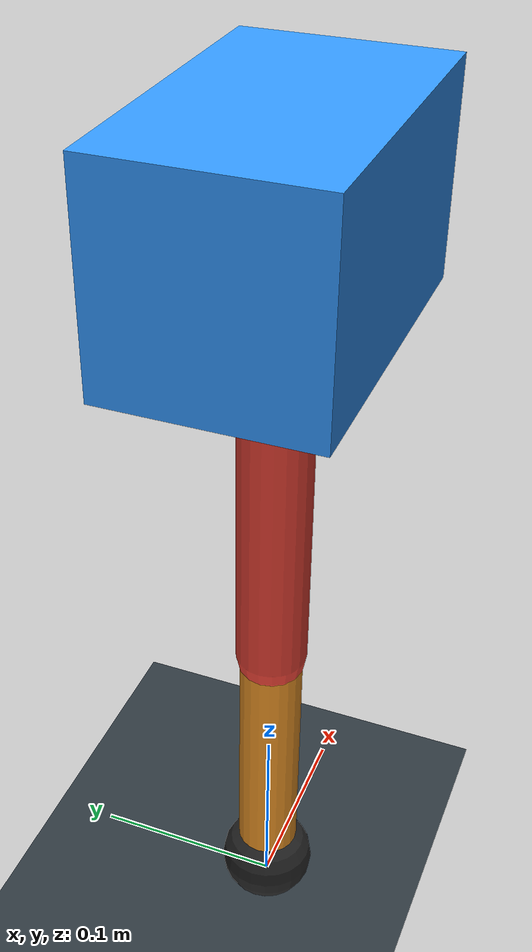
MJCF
<mujoco model="single_axis_two_bar">
  <compiler angle="radian" inertiafromgeom="true"/>
  <option timestep="0.001" integrator="implicitfast" gravity="0 0 -9.81"/>
  <default>
    <joint damping="0.08"/>
    <geom friction="1.2 0.01 0.0001" condim="3"/>
  </default>
  <worldbody>
    <geom name="floor" type="plane" size="5 5 0.1" rgba="0.18 0.22 0.25 1"/>
    <body name="carriage" pos="0 0 0.3950140125060014">
      <joint name="pole_slide" type="slide" axis="0 0 1"/>
      <geom name="payload" type="box" size="0.08 0.05 0.05" mass="2.278960049999526" rgba="0.2 0.6 1 1"/>
      <body name="thigh" pos="0 0 0">
        <joint name="hip" type="hinge" axis="0 1 0"/>
        <geom name="thigh_link" type="capsule" fromto="0 0 0 0 0 -0.22883482228955304" size="0.018" mass="0.16304783466669945" rgba="0.9 0.25 0.2 1"/>
        <body name="shank" pos="0 0 -0.22883482228955304">
          <joint name="knee" type="hinge" axis="0 1 0"/>
          <geom name="shank_link" type="capsule" fromto="0 0 0 0 0 -0.15262292256199475" size="0.016" mass="0.10874584905940977" rgba="0.95 0.6 0.15 1"/>
          <geom name="foot" type="sphere" pos="0 0 -0.15262292256199475" size="0.025" mass="0.03" rgba="0.15 0.15 0.15 1"/>
          <site name="toe" pos="0 0 -0.15262292256199475" size="0.008"/>
        </body>
      </body>
    </body>
  </worldbody>
  <actuator>
    <motor name="hip_motor" joint="hip" ctrlrange="-29.691219073677722 29.691219073677722"/>
    <motor name="knee_motor" joint="knee" ctrlrange="-22.790795522500925 22.790795522500925"/>
  </actuator>
</mujoco>
